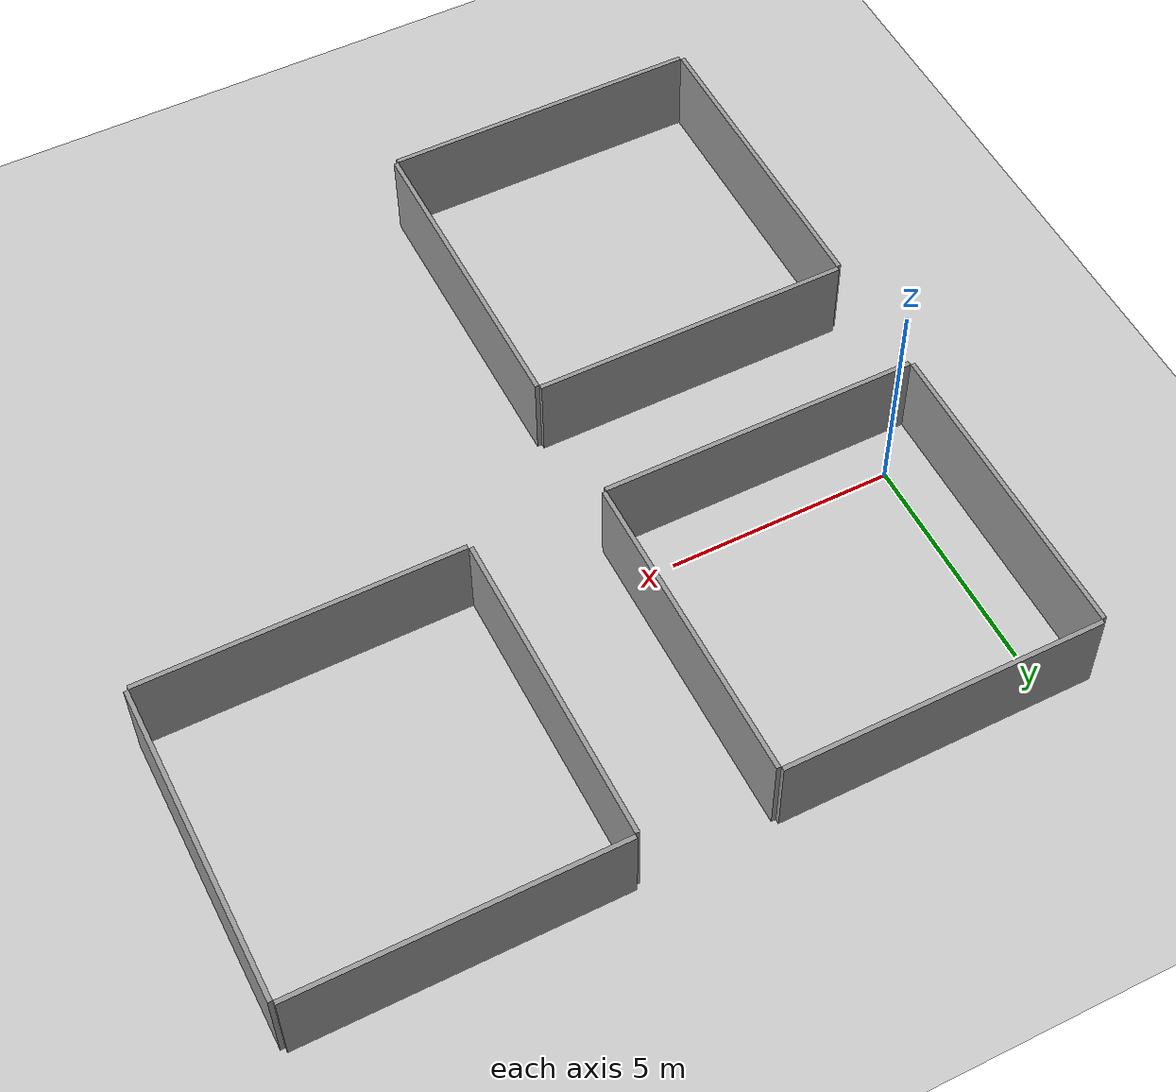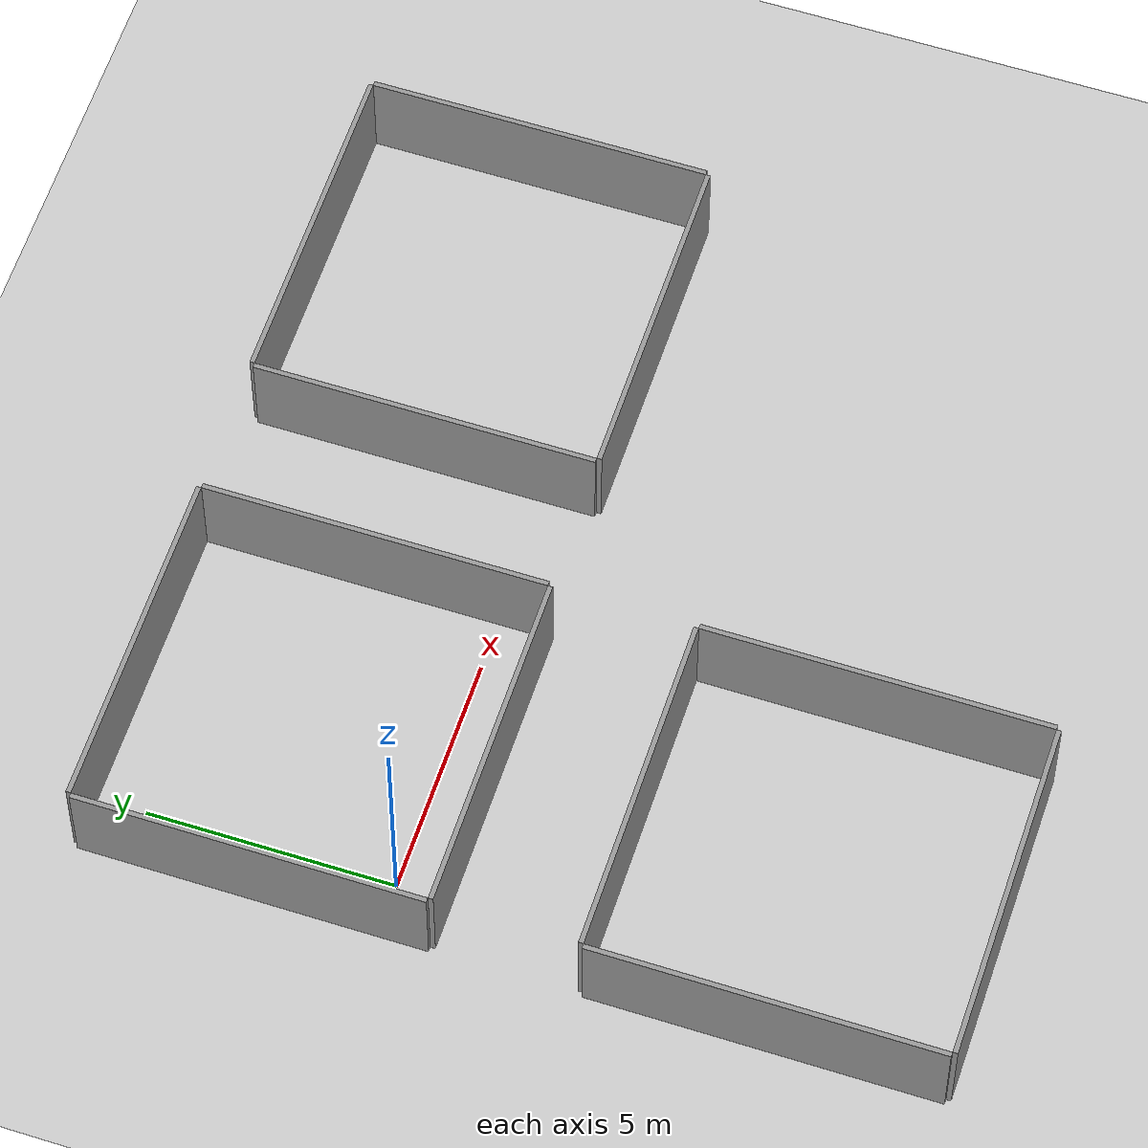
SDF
<sdf version="1.6">
 <world name="default">
  <include><uri>model://ground_plane</uri></include>
  <include><uri>model://sun</uri></include>
  <model name="wall_left">
   <link name="Wall_bottom">
    <collision name="Wall_0_Collision"><geometry><box><size>7 0.1 2</size></box></geometry></collision>
    <visual name="Wall_0_Visual">
     <geometry><box><size>7 0.1 2</size></box></geometry>
     <material>
      <script><uri>file://media/materials/scripts/gazebo.material</uri><name>Gazebo/Grey</name></script>
      <ambient>1 1 1 1</ambient>
     </material>
     <meta><layer>0</layer></meta>
    </visual>
    <pose>2.5 -1.05 1 0 -0 0</pose>
   </link>
   <link name="Wall_up">
    <collision name="Wall_0_Collision"><geometry><box><size>7 0.1 2</size></box></geometry></collision>
    <visual name="Wall_0_Visual">
     <geometry><box><size>7 0.1 2</size></box></geometry>
     <material>
      <script><uri>file://media/materials/scripts/gazebo.material</uri><name>Gazebo/Grey</name></script>
      <ambient>1 1 1 1</ambient>
     </material>
     <meta><layer>0</layer></meta>
    </visual>
    <pose>2.5 6.05 1 0 -0 0</pose>
   </link>
   <link name="Wall_left">
    <collision name="Wall_1_Collision"><geometry><box><size>0.1 7 2</size></box></geometry></collision>
    <visual name="Wall_1_Visual">
     <geometry><box><size>0.1 7 2</size></box></geometry>
     <material>
      <script><uri>file://media/materials/scripts/gazebo.material</uri><name>Gazebo/Grey</name></script>
      <ambient>1 1 1 1</ambient>
     </material>
     <meta><layer>0</layer></meta>
    </visual>
    <pose>-1.05 2.5 1 0 -0 0</pose>
   </link>
   <link name="Wall_right">
    <collision name="Wall_1_Collision"><geometry><box><size>0.1 7 2</size></box></geometry></collision>
    <visual name="Wall_1_Visual">
     <geometry><box><size>0.1 7 2</size></box></geometry>
     <material>
      <script><uri>file://media/materials/scripts/gazebo.material</uri><name>Gazebo/Grey</name></script>
      <ambient>1 1 1 1</ambient>
     </material>
     <meta><layer>0</layer></meta>
    </visual>
    <pose>6.05 2.5 1 0 -0 0</pose>
   </link>
   <static>1</static>
  </model>
  <model name="wall_right">
   <pose>10 0 0 0 0 0</pose>
   <link name="Wall_bottom">
    <collision name="Wall_0_Collision"><geometry><box><size>7 0.1 2</size></box></geometry></collision>
    <visual name="Wall_0_Visual">
     <geometry><box><size>7 0.1 2</size></box></geometry>
     <material>
      <script><uri>file://media/materials/scripts/gazebo.material</uri><name>Gazebo/Grey</name></script>
      <ambient>1 1 1 1</ambient>
     </material>
     <meta><layer>0</layer></meta>
    </visual>
    <pose>2.5 -1.05 1 0 -0 0</pose>
   </link>
   <link name="Wall_up">
    <collision name="Wall_0_Collision"><geometry><box><size>7 0.1 2</size></box></geometry></collision>
    <visual name="Wall_0_Visual">
     <geometry><box><size>7 0.1 2</size></box></geometry>
     <material>
      <script><uri>file://media/materials/scripts/gazebo.material</uri><name>Gazebo/Grey</name></script>
      <ambient>1 1 1 1</ambient>
     </material>
     <meta><layer>0</layer></meta>
    </visual>
    <pose>2.5 6.05 1 0 -0 0</pose>
   </link>
   <link name="Wall_left">
    <collision name="Wall_1_Collision"><geometry><box><size>0.1 7 2</size></box></geometry></collision>
    <visual name="Wall_1_Visual">
     <geometry><box><size>0.1 7 2</size></box></geometry>
     <material>
      <script><uri>file://media/materials/scripts/gazebo.material</uri><name>Gazebo/Grey</name></script>
      <ambient>1 1 1 1</ambient>
     </material>
     <meta><layer>0</layer></meta>
    </visual>
    <pose>-1.05 2.5 1 0 -0 0</pose>
   </link>
   <link name="Wall_right">
    <collision name="Wall_1_Collision"><geometry><box><size>0.1 7 2</size></box></geometry></collision>
    <visual name="Wall_1_Visual">
     <geometry><box><size>0.1 7 2</size></box></geometry>
     <material>
      <script><uri>file://media/materials/scripts/gazebo.material</uri><name>Gazebo/Grey</name></script>
      <ambient>1 1 1 1</ambient>
     </material>
     <meta><layer>0</layer></meta>
    </visual>
    <pose>6.05 2.5 1 0 -0 0</pose>
   </link>
   <static>1</static>
  </model>
  <model name="wall_left_down">
   <pose>0 -10 0 0 0 0</pose>
   <link name="Wall_bottom">
    <collision name="Wall_0_Collision"><geometry><box><size>7 0.1 2</size></box></geometry></collision>
    <visual name="Wall_0_Visual">
     <geometry><box><size>7 0.1 2</size></box></geometry>
     <material>
      <script><uri>file://media/materials/scripts/gazebo.material</uri><name>Gazebo/Grey</name></script>
      <ambient>1 1 1 1</ambient>
     </material>
     <meta><layer>0</layer></meta>
    </visual>
    <pose>2.5 -1.05 1 0 -0 0</pose>
   </link>
   <link name="Wall_up">
    <collision name="Wall_0_Collision"><geometry><box><size>7 0.1 2</size></box></geometry></collision>
    <visual name="Wall_0_Visual">
     <geometry><box><size>7 0.1 2</size></box></geometry>
     <material>
      <script><uri>file://media/materials/scripts/gazebo.material</uri><name>Gazebo/Grey</name></script>
      <ambient>1 1 1 1</ambient>
     </material>
     <meta><layer>0</layer></meta>
    </visual>
    <pose>2.5 6.05 1 0 -0 0</pose>
   </link>
   <link name="Wall_left">
    <collision name="Wall_1_Collision"><geometry><box><size>0.1 7 2</size></box></geometry></collision>
    <visual name="Wall_1_Visual">
     <geometry><box><size>0.1 7 2</size></box></geometry>
     <material>
      <script><uri>file://media/materials/scripts/gazebo.material</uri><name>Gazebo/Grey</name></script>
      <ambient>1 1 1 1</ambient>
     </material>
     <meta><layer>0</layer></meta>
    </visual>
    <pose>-1.05 2.5 1 0 -0 0</pose>
   </link>
   <link name="Wall_right">
    <collision name="Wall_1_Collision"><geometry><box><size>0.1 7 2</size></box></geometry></collision>
    <visual name="Wall_1_Visual">
     <geometry><box><size>0.1 7 2</size></box></geometry>
     <material>
      <script><uri>file://media/materials/scripts/gazebo.material</uri><name>Gazebo/Grey</name></script>
      <ambient>1 1 1 1</ambient>
     </material>
     <meta><layer>0</layer></meta>
    </visual>
    <pose>6.05 2.5 1 0 -0 0</pose>
   </link>
   <static>1</static>
  </model>
 </world>
</sdf>
